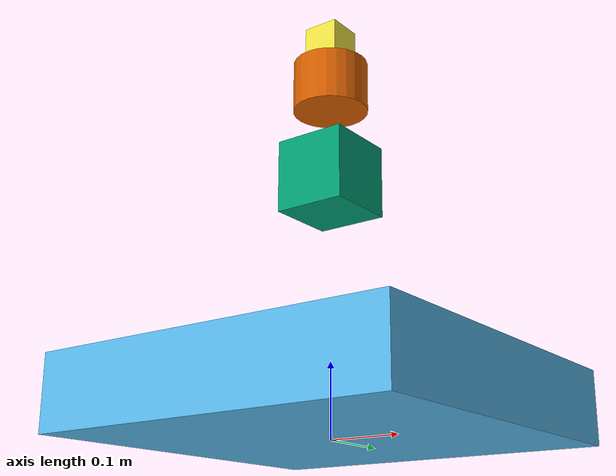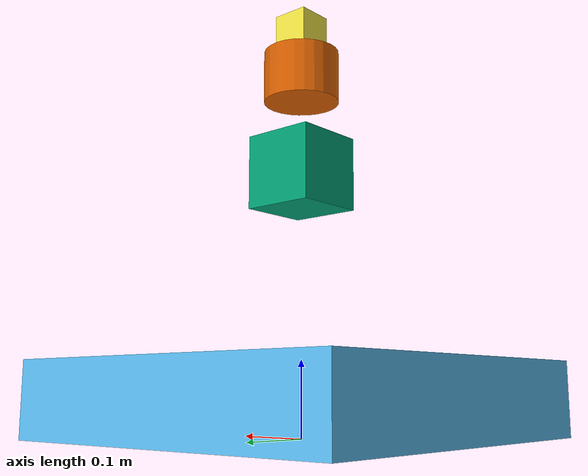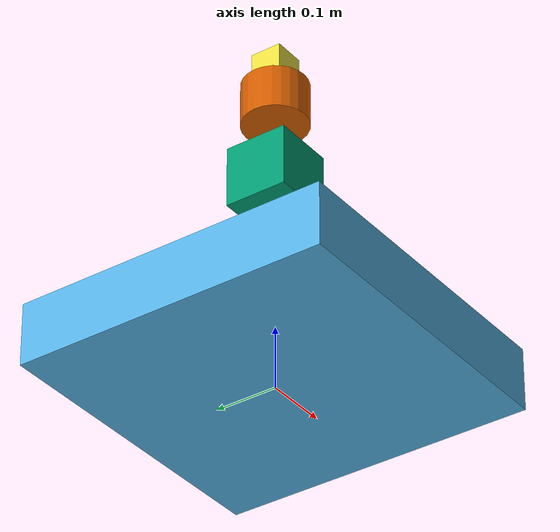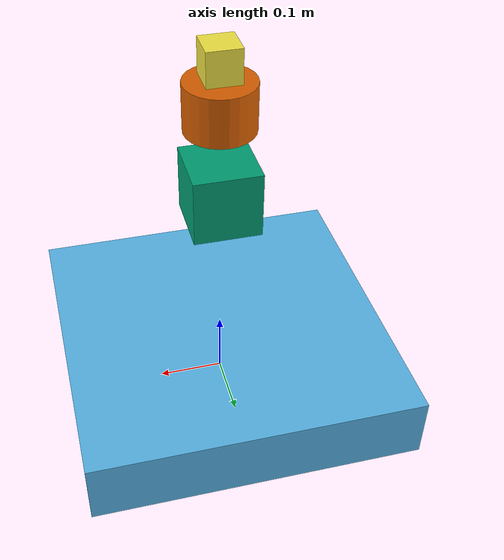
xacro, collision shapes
<?xml version="1.0"?>
<robot xmlns:xacro="http://www.ros.org/wiki/xacro" name="example">
  <xacro:arg name="gpu" default="false"/>
  <xacro:property name="gpu" value="$(arg gpu)" />
  <xacro:arg name="organize_cloud" default="false"/>
  <xacro:property name="organize_cloud" value="$(arg organize_cloud)" />

  <!-- Base Footprint -->
  <link name="base_footprint" />

  <!-- Base Link -->
  <joint name="footprint" type="fixed" >
   <parent link="base_footprint" />
    <child link="base_link" />
    <origin xyz="0 0 0.05" rpy="0 0 0" />
  </joint>

  <link name="base_link" >
    <visual>
      <geometry>
        <box size="0.5 0.5 0.1" />
      </geometry>
    </visual>
    <collision>
      <geometry>
        <box size="0.5 0.5 0.1" />
      </geometry>
    </collision>
    <inertial>
      <origin xyz="0 0 0"/>
      <mass value="10"/>
      <inertia ixx="3.0" ixy="0.0" ixz="0.0"
               iyy="3.0" iyz="0.0"
               izz="3.0" />
    </inertial>
  </link>

  <!-- Hokuyo joint -->
  <joint name="hokuyo_joint" type="fixed">
    <origin xyz="0.0 0 0.3" rpy="0 0 0"/>
    <parent link="base_link"/>
    <axis xyz="0 1 0" />
    <child link="hokuyo_link"/>
  </joint>

  <!-- Hokuyo Laser -->
  <link name="hokuyo_link">
    <collision>
      <origin xyz="0 0 0" rpy="0 0 0"/>
      <geometry>
        <box size="0.1 0.1 0.1"/>
      </geometry>
     </collision>
     <visual>
       <origin xyz="0 0 0" rpy="0 0 0"/>
       <geometry>
         <mesh filename="package://velodyne_description/meshes/hokuyo.dae"/>
       </geometry>
     </visual>
     <inertial>
       <mass value="1e-5" />
       <origin xyz="0 0 0" rpy="0 0 0"/>
       <inertia ixx="1e-6" ixy="0" ixz="0" iyy="1e-6" iyz="0" izz="1e-6" />
     </inertial>
  </link>

  <!-- Camera -->
  <link name="camera">
    <inertial>
      <mass value="0.1"/>
      <origin xyz="0 0 0" rpy="0 0 0"/>
      <inertia
        ixx="1e-6" ixy="0.0" ixz="0.0"
	iyy="1e-6" iyz="0.0"
	izz="1e-6"
      />
    </inertial>
    <visual>
      <origin xyz="0 0 0" rpy="0 0 0"/>
        <geometry>
          <box size="0.05 0.05 0.05"/>
        </geometry>
    </visual>
    <collision>
      <origin xyz="0 0 0" rpy="0 0 0"/>
        <geometry>
          <box size="0.05 0.05 0.05"/>
        </geometry>
    </collision>
  </link>

  <!-- Camera Joint -->
  <joint name="camera_joint" type="fixed">
    <origin xyz="0.0 0 0.5" rpy="0 0 0" />
    <parent link="base_link"/>
    <child link="camera" />
    <axis xyz="0 1 0"/>
  </joint>

  <!-- imu data -->
  <link name="imu_link"/>

  <!-- imu joint -->
  <joint name="imu_joint" type="fixed">
    <parent link="base_link"/>
    <child link="imu_link"/>
    <origin xyz="0.0 0 0.1" rpy="0 0 0"/>
  </joint>

  <xacro:include filename="$(find velodyne_description)/urdf/VLP-16.urdf.xacro"/>
  <xacro:VLP-16 parent="base_link" name="velodyne" topic="/velodyne_points" organize_cloud="${organize_cloud}" hz="10" samples="440" gpu="${gpu}">
    <origin xyz="0 0 0.4" rpy="0 0 0" />
  </xacro:VLP-16>

  <!-- hokuyo -->
  <gazebo reference="hokuyo_link">
    <sensor type="ray" name="head_hokuyo_sensor">
      <pose>0 0 0 0 0 0</pose>
      <visualize>true</visualize>
      <update_rate>40</update_rate>
      <ray>
        <scan>
          <horizontal>
            <samples>720</samples>
            <resolution>1</resolution>
            <min_angle>-1.570796</min_angle>
            <max_angle>1.570796</max_angle>
          </horizontal>
        </scan>
        <range>
          <min>0.10</min>
          <max>30.0</max>
          <resolution>0.01</resolution>
        </range>
        <noise>
          <type>gaussian</type>
          <mean>0.0</mean>
          <stddev>0.01</stddev>
        </noise>
      </ray>
      <plugin name="gazebo_ros_head_hokuyo_controller" filename="libgazebo_ros_laser.so">
        <topicName>/scan</topicName>
        <frameName>hokuyo_link</frameName>
      </plugin>
    </sensor>
  </gazebo>

  <!-- camera -->
  <gazebo reference="camera">
    <sensor type="camera" name="camera1">
      <update_rate>30.0</update_rate>
      <camera name="head">
        <horizontal_fov>1.3962634</horizontal_fov>
        <image>
          <width>800</width>
          <height>800</height>
          <format>R8G8B8</format>
        </image>
        <clip>
          <near>0.02</near>
          <far>300</far>
        </clip>
      </camera>
      <plugin name="camera_controller" filename="libgazebo_ros_camera.so">
        <alwaysOn>true</alwaysOn>
        <updateRate>0.0</updateRate>
        <cameraName>camera</cameraName>
        <imageTopicName>rgb/image_raw</imageTopicName>
        <cameraInfoTopicName>rgb/camera_info</cameraInfoTopicName>
        <frameName>camera</frameName>
        <hackBaseline>0.07</hackBaseline>
        <distortionK1>0.0</distortionK1>
        <distortionK2>0.0</distortionK2>
        <distortionK3>0.0</distortionK3>
        <distortionT1>0.0</distortionT1>
        <distortionT2>0.0</distortionT2>
      </plugin>
    </sensor>
  </gazebo>

  <!-- imu -->
  <gazebo>
    <plugin name="imu_plugin" filename="libgazebo_ros_imu.so">
      <alwaysOn>true</alwaysOn>
      <bodyName>imu_link</bodyName>
      <frameName>imu_link</frameName>
      <topicName>imu</topicName>
      <serviceName>imu_service</serviceName>
      <gaussianNoise>0.0</gaussianNoise>
      <updateRate>200</updateRate>
      <imu>
        <noise>
          <type>gaussian</type>
          <rate>
            <mean>0.0</mean>
            <stddev>2e-4</stddev>
            <bias_mean>0.0000075</bias_mean>
            <bias_stddev>0.0000008</bias_stddev>
          </rate>
          <accel>
            <mean>0.0</mean>
            <stddev>1.7e-2</stddev>
            <bias_mean>0.1</bias_mean>
            <bias_stddev>0.001</bias_stddev>
          </accel>
        </noise>
      </imu>
    </plugin>
  </gazebo>

</robot>

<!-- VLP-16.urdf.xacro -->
<robot xmlns:xacro="http://www.ros.org/wiki/xacro" name="VLP-16">
  <xacro:property name="M_PI" value="3.1415926535897931" />
  <xacro:macro name="VLP-16" params="*origin is_sim:=true parent:=base_link name:=velodyne tf_prefix:='' topic:=/velodyne_points organize_cloud:=false hz:=10 lasers:=16 samples:=1875 collision_range:=0.3 min_range:=0.0 max_range:=100.0 noise:=0.008 min_angle:=-${M_PI} max_angle:=${M_PI} gpu:=false">

    <joint name="${name}_base_mount_joint" type="fixed">
      <xacro:insert_block name="origin" />
      <parent link="${parent}"/>
      <child link="${name}_base_link"/>
    </joint>

    <link name="${name}_base_link">
      <inertial>
        <mass value="0.83"/>
        <origin xyz="0 0 0.03585"/>
        <inertia ixx="${(0.83 * (3.0*0.0516*0.0516 + 0.0717*0.0717)) / 12.0}" ixy="0" ixz="0"
          iyy="${(0.83 * (3.0*0.0516*0.0516 + 0.0717*0.0717)) / 12.0}" iyz="0"
          izz="${0.5 * 0.83 * (0.0516*0.0516)}"/>
      </inertial>
      <visual>
        <geometry>
          <mesh filename="package://velodyne_description/meshes/VLP16_base_1.dae" />
        </geometry>
      </visual>
      <visual>
        <geometry>
          <mesh filename="package://velodyne_description/meshes/VLP16_base_2.dae" />
        </geometry>
      </visual>
      <collision>
        <origin rpy="0 0 0" xyz="0 0 0.03585"/>
        <geometry>
          <cylinder radius="0.0516" length="0.0717"/>
        </geometry>
      </collision>
    </link>

    <joint name="${name}_base_scan_joint" type="fixed" >
      <origin xyz="0 0 0.0377" rpy="0 0 0" />
      <parent link="${name}_base_link" />
      <child link="${name}"/>
    </joint>

    <link name="${name}">
      <inertial>
        <mass value="0.01"/>
        <origin xyz="0 0 0"/>
        <inertia ixx="1e-7" ixy="0" ixz="0" iyy="1e-7" iyz="0" izz="1e-7"/>
      </inertial>
      <visual>
        <origin xyz="0 0 -0.0377" />
        <geometry>
          <mesh filename="package://velodyne_description/meshes/VLP16_scan.dae" />
        </geometry>
      </visual>
      <collision>
        <geometry>
          <sphere radius="0"/>
        </geometry>
      </collision>
    </link>

    <!-- Gazebo requires the velodyne_gazebo_plugins package -->
    <xacro:if value="${is_sim}">
        <gazebo reference="${name}">
            <xacro:if value="${gpu}">
                <sensor type="gpu_ray" name="${name}-VLP16">
                <pose>0 0 0 0 0 0</pose>
                <visualize>false</visualize>
                <update_rate>${hz}</update_rate>
                <ray>
                    <scan>
                    <horizontal>
                        <samples>${samples}</samples>
                        <resolution>1</resolution>
                        <min_angle>${min_angle}</min_angle>
                        <max_angle>${max_angle}</max_angle>
                    </horizontal>
                    <vertical>
                        <samples>${lasers}</samples>
                        <resolution>1</resolution>
                        <min_angle>-${15.0*M_PI/180.0}</min_angle>
                        <max_angle> ${15.0*M_PI/180.0}</max_angle>
                    </vertical>
                    </scan>
                    <range>
                    <min>${collision_range}</min>
                    <max>${max_range+1}</max>
                    <resolution>0.001</resolution>
                    </range>
                    <noise>
                    <type>gaussian</type>
                    <mean>0.0</mean>
                    <stddev>0.0</stddev>
                    </noise>
                </ray>
                <plugin name="gazebo_ros_laser_controller" filename="libgazebo_ros_velodyne_laser.so">
                    <ros>
                    <namespace>/${name}</namespace>
                    <remapping>~/out:=${topic}</remapping>
                    </ros>
                    <tf_prefix>${tf_prefix}</tf_prefix>
                    <frame_name>${name}</frame_name>
                    <organize_cloud>${organize_cloud}</organize_cloud>
                    <min_range>${min_range}</min_range>
                    <max_range>${max_range}</max_range>
                    <gaussian_noise>${noise}</gaussian_noise>
                </plugin>
                </sensor>
            </xacro:if>
            <xacro:unless value="${gpu}">
                <sensor type="ray" name="${name}-VLP16">
                <pose>0 0 0 0 0 0</pose>
                <visualize>false</visualize>
                <update_rate>${hz}</update_rate>
                <ray>
                    <scan>
                    <horizontal>
                        <samples>${samples}</samples>
                        <resolution>1</resolution>
                        <min_angle>${min_angle}</min_angle>
                        <max_angle>${max_angle}</max_angle>
                    </horizontal>
                    <vertical>
                        <samples>${lasers}</samples>
                        <resolution>1</resolution>
                        <min_angle>-${15.0*M_PI/180.0}</min_angle>
                        <max_angle> ${15.0*M_PI/180.0}</max_angle>
                    </vertical>
                    </scan>
                    <range>
                    <min>${collision_range}</min>
                    <max>${max_range+1}</max>
                    <resolution>0.001</resolution>
                    </range>
                    <noise>
                    <type>gaussian</type>
                    <mean>0.0</mean>
                    <stddev>0.0</stddev>
                    </noise>
                </ray>
                <plugin name="gazebo_ros_laser_controller" filename="libgazebo_ros_velodyne_laser.so">
                    <ros>
                    <namespace>/${name}</namespace>
                    <remapping>~/out:=${topic}</remapping>
                    </ros>
                    <tf_prefix>${tf_prefix}</tf_prefix>
                    <frame_name>${name}</frame_name>
                    <organize_cloud>${organize_cloud}</organize_cloud>
                    <min_range>${min_range}</min_range>
                    <max_range>${max_range}</max_range>
                    <gaussian_noise>${noise}</gaussian_noise>
                </plugin>
                </sensor>
            </xacro:unless>
        </gazebo>
    </xacro:if>

  </xacro:macro>
</robot>
